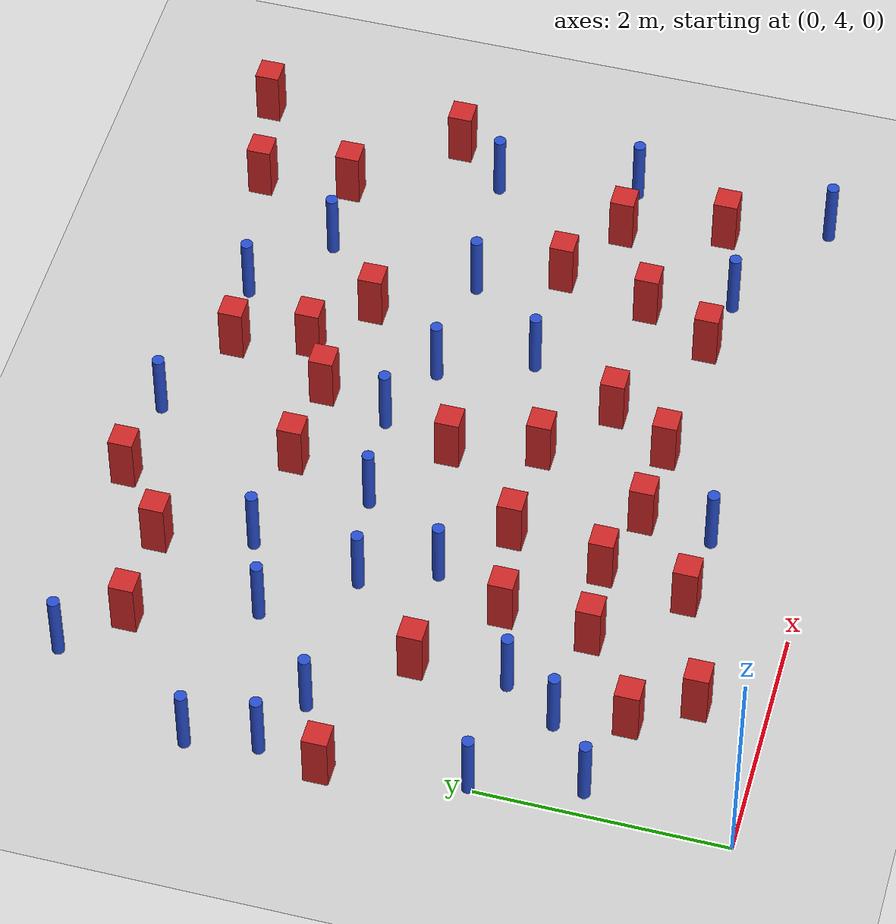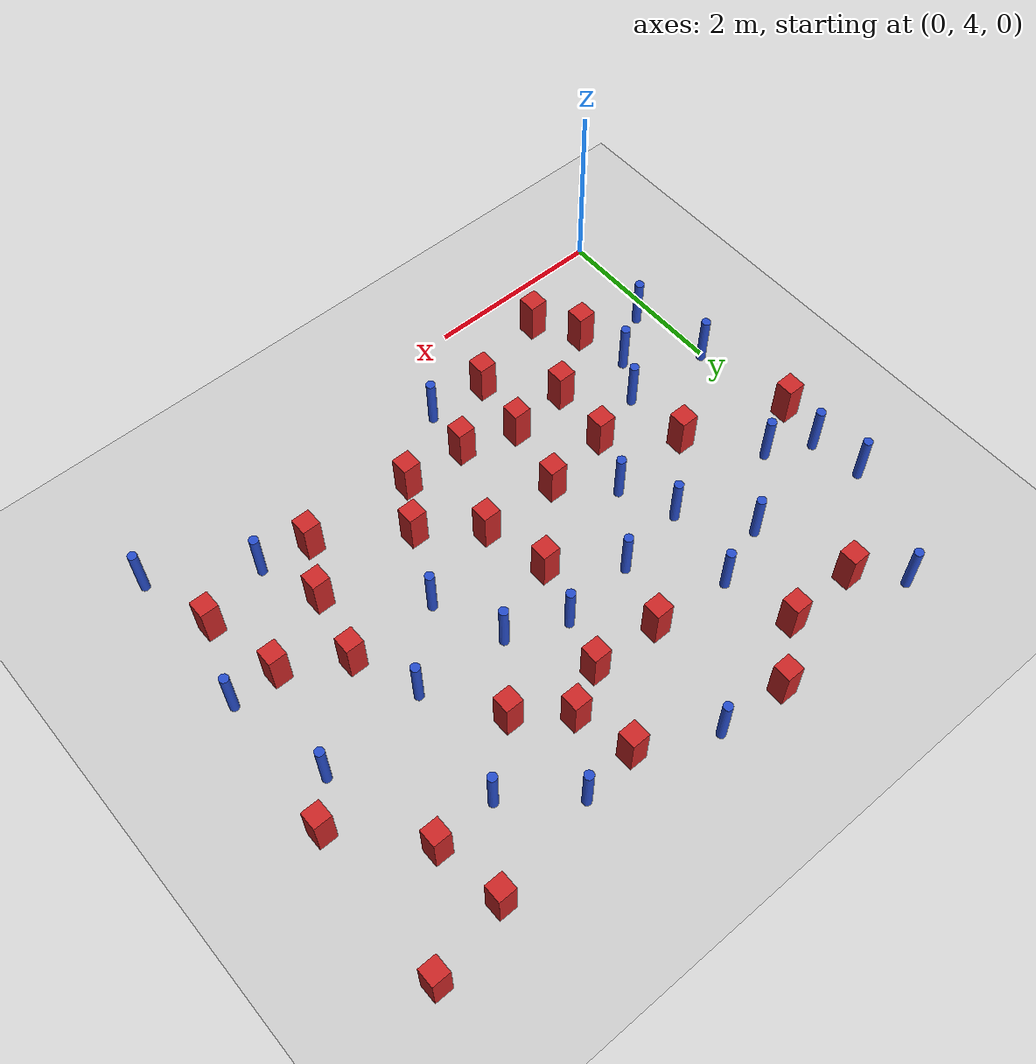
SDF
<sdf version="1.6">
 <world name="default">
  <model name="ground_plane">
   <static>1</static>
   <link name="link">
    <collision name="collision">
     <geometry><plane><normal>0 0 1</normal><size>100 100</size></plane></geometry>
     <surface><friction><ode><mu>100</mu><mu2>50</mu2></ode></friction></surface>
    </collision>
    <visual name="visual">
     <cast_shadows>0</cast_shadows>
     <geometry><plane><normal>0 0 1</normal><size>100 100</size></plane></geometry>
     <material>
      <ambient>1.0 1.0 1.0 1.0</ambient>
      <diffuse>0.8 0.8 0.8 1.0</diffuse>
      <specular>0.01 0.01 0.01 1.000000</specular>
     </material>
    </visual>
   </link>
  </model>
  <model name="square_post_obstacle1">
   <static>true</static>
   <pose>0.894384582868 9.0033171066 -6.11067671241e-07 -5.50515727128e-06 -8.79689657224e-07 2.37013304536e-05</pose>
   <link name="link">
    <pose>0 0 0.25 0 -0 0</pose>
    <inertial>
     <mass>100</mass>
     <inertia>
      <ixx>0.166667</ixx>
      <ixy>0</ixy>
      <ixz>0</ixz>
      <iyy>0.166667</iyy>
      <iyz>0</iyz>
      <izz>0.166667</izz>
     </inertia>
    </inertial>
    <collision name="collision"><geometry><box><size>.2 .2 .5</size></box></geometry></collision>
    <visual name="visual">
     <geometry><box><size>.2 .2 .5</size></box></geometry>
     <material>
      <script><name>Gazebo/Red</name><uri>file://media/materials/scripts/gazebo.material</uri></script>
     </material>
    </visual>
   </link>
  </model>
  <model name="pole_obstacle2">
   <static>true</static>
   <pose>0.753142357404 5.56163420365 -9.47619616065e-06 5.49618799737e-07 2.36310414065e-07 -1.55090534796e-07</pose>
   <link name="link">
    <pose>0 0 0.3 0 -0 0</pose>
    <inertial>
     <mass>1</mass>
     <inertia><ixx>0.145833</ixx><ixy>0</ixy><ixz>0</ixz><iyy>0.145833</iyy><iyz>0</iyz><izz>0.125</izz></inertia>
    </inertial>
    <collision name="collision">
     <geometry><cylinder><radius>0.05</radius><length>.6</length></cylinder></geometry>
    </collision>
    <visual name="visual">
     <geometry><cylinder><radius>0.05</radius><length>.6</length></cylinder></geometry>
     <material>
      <script><name>Gazebo/Blue</name><uri>file://media/materials/scripts/gazebo.material</uri></script>
     </material>
    </visual>
   </link>
  </model>
  <model name="pole_obstacle5">
   <static>true</static>
   <pose>2.79837274544 4.79413468855 -9.47619616065e-06 5.49618799738e-07 2.3631041406e-07 -1.55090534801e-07</pose>
   <link name="link">
    <pose>0 0 0.3 0 -0 0</pose>
    <inertial>
     <mass>1</mass>
     <inertia><ixx>0.145833</ixx><ixy>0</ixy><ixz>0</ixz><iyy>0.145833</iyy><iyz>0</iyz><izz>0.125</izz></inertia>
    </inertial>
    <collision name="collision">
     <geometry><cylinder><radius>0.05</radius><length>.6</length></cylinder></geometry>
    </collision>
    <visual name="visual">
     <geometry><cylinder><radius>0.05</radius><length>.6</length></cylinder></geometry>
     <material>
      <script><name>Gazebo/Blue</name><uri>file://media/materials/scripts/gazebo.material</uri></script>
     </material>
    </visual>
   </link>
  </model>
  <model name="square_post_obstacle7">
   <static>true</static>
   <pose>4.74108814774 5.26752982219 -6.11067671241e-07 -5.50515727128e-06 -8.79689657224e-07 2.37013304536e-05</pose>
   <link name="link">
    <pose>0 0 0.25 0 -0 0</pose>
    <inertial>
     <mass>100</mass>
     <inertia>
      <ixx>0.166667</ixx>
      <ixy>0</ixy>
      <ixz>0</ixz>
      <iyy>0.166667</iyy>
      <iyz>0</iyz>
      <izz>0.166667</izz>
     </inertia>
    </inertial>
    <collision name="collision"><geometry><box><size>.2 .2 .5</size></box></geometry></collision>
    <visual name="visual">
     <geometry><box><size>.2 .2 .5</size></box></geometry>
     <material>
      <script><name>Gazebo/Red</name><uri>file://media/materials/scripts/gazebo.material</uri></script>
     </material>
    </visual>
   </link>
  </model>
  <model name="pole_obstacle8">
   <static>true</static>
   <pose>1.86516818854 8.27043241651 -9.47619616065e-06 5.49618799737e-07 2.36310414046e-07 -1.55090534809e-07</pose>
   <link name="link">
    <pose>0 0 0.3 0 -0 0</pose>
    <inertial>
     <mass>1</mass>
     <inertia><ixx>0.145833</ixx><ixy>0</ixy><ixz>0</ixz><iyy>0.145833</iyy><iyz>0</iyz><izz>0.125</izz></inertia>
    </inertial>
    <collision name="collision">
     <geometry><cylinder><radius>0.05</radius><length>.6</length></cylinder></geometry>
    </collision>
    <visual name="visual">
     <geometry><cylinder><radius>0.05</radius><length>.6</length></cylinder></geometry>
     <material>
      <script><name>Gazebo/Blue</name><uri>file://media/materials/scripts/gazebo.material</uri></script>
     </material>
    </visual>
   </link>
  </model>
  <model name="square_post_obstacle17">
   <static>true</static>
   <pose>6.01914977429 5.394370499 -6.11067671241e-07 -5.50515727128e-06 -8.79689657224e-07 2.37013304536e-05</pose>
   <link name="link">
    <pose>0 0 0.25 0 -0 0</pose>
    <inertial>
     <mass>100</mass>
     <inertia>
      <ixx>0.166667</ixx>
      <ixy>0</ixy>
      <ixz>0</ixz>
      <iyy>0.166667</iyy>
      <iyz>0</iyz>
      <izz>0.166667</izz>
     </inertia>
    </inertial>
    <collision name="collision"><geometry><box><size>.2 .2 .5</size></box></geometry></collision>
    <visual name="visual">
     <geometry><box><size>.2 .2 .5</size></box></geometry>
     <material>
      <script><name>Gazebo/Red</name><uri>file://media/materials/scripts/gazebo.material</uri></script>
     </material>
    </visual>
   </link>
  </model>
  <model name="pole_obstacle11">
   <static>true</static>
   <pose>4.92978391876 7.26222886817 -9.47619616065e-06 5.49618799737e-07 2.36310414037e-07 -1.55090534814e-07</pose>
   <link name="link">
    <pose>0 0 0.3 0 -0 0</pose>
    <inertial>
     <mass>1</mass>
     <inertia><ixx>0.145833</ixx><ixy>0</ixy><ixz>0</ixz><iyy>0.145833</iyy><iyz>0</iyz><izz>0.125</izz></inertia>
    </inertial>
    <collision name="collision">
     <geometry><cylinder><radius>0.05</radius><length>.6</length></cylinder></geometry>
    </collision>
    <visual name="visual">
     <geometry><cylinder><radius>0.05</radius><length>.6</length></cylinder></geometry>
     <material>
      <script><name>Gazebo/Blue</name><uri>file://media/materials/scripts/gazebo.material</uri></script>
     </material>
    </visual>
   </link>
  </model>
  <model name="pole_obstacle18">
   <static>true</static>
   <pose>2.49929061689 7.50461942929 -9.47619616065e-06 5.49618799738e-07 2.3631041406e-07 -1.55090534801e-07</pose>
   <link name="link">
    <pose>0 0 0.3 0 -0 0</pose>
    <inertial>
     <mass>1</mass>
     <inertia><ixx>0.145833</ixx><ixy>0</ixy><ixz>0</ixz><iyy>0.145833</iyy><iyz>0</iyz><izz>0.125</izz></inertia>
    </inertial>
    <collision name="collision">
     <geometry><cylinder><radius>0.05</radius><length>.6</length></cylinder></geometry>
    </collision>
    <visual name="visual">
     <geometry><cylinder><radius>0.05</radius><length>.6</length></cylinder></geometry>
     <material>
      <script><name>Gazebo/Blue</name><uri>file://media/materials/scripts/gazebo.material</uri></script>
     </material>
    </visual>
   </link>
  </model>
  <model name="pole_obstacle24">
   <static>true</static>
   <pose>0.0267479035835 6.04066825967 -9.47619616065e-06 5.49618799737e-07 2.36310414066e-07 -1.55090534797e-07</pose>
   <link name="link">
    <pose>0 0 0.3 0 -0 0</pose>
    <inertial>
     <mass>1</mass>
     <inertia><ixx>0.145833</ixx><ixy>0</ixy><ixz>0</ixz><iyy>0.145833</iyy><iyz>0</iyz><izz>0.125</izz></inertia>
    </inertial>
    <collision name="collision">
     <geometry><cylinder><radius>0.05</radius><length>.6</length></cylinder></geometry>
    </collision>
    <visual name="visual">
     <geometry><cylinder><radius>0.05</radius><length>.6</length></cylinder></geometry>
     <material>
      <script><name>Gazebo/Blue</name><uri>file://media/materials/scripts/gazebo.material</uri></script>
     </material>
    </visual>
   </link>
  </model>
  <model name="pole_obstacle27">
   <static>true</static>
   <pose>-0.0304629822005 7.66720182366 -9.47619616065e-06 5.49618799737e-07 2.36310414067e-07 -1.55090534797e-07</pose>
   <link name="link">
    <pose>0 0 0.3 0 -0 0</pose>
    <inertial>
     <mass>1</mass>
     <inertia><ixx>0.145833</ixx><ixy>0</ixy><ixz>0</ixz><iyy>0.145833</iyy><iyz>0</iyz><izz>0.125</izz></inertia>
    </inertial>
    <collision name="collision">
     <geometry><cylinder><radius>0.05</radius><length>.6</length></cylinder></geometry>
    </collision>
    <visual name="visual">
     <geometry><cylinder><radius>0.05</radius><length>.6</length></cylinder></geometry>
     <material>
      <script><name>Gazebo/Blue</name><uri>file://media/materials/scripts/gazebo.material</uri></script>
     </material>
    </visual>
   </link>
  </model>
  <model name="pole_obstacle40">
   <static>true</static>
   <pose>4.41660310928 9.0744656042 -9.47619616065e-06 5.49618799737e-07 2.36310414065e-07 -1.55090534796e-07</pose>
   <link name="link">
    <pose>0 0 0.3 0 -0 0</pose>
    <inertial>
     <mass>1</mass>
     <inertia><ixx>0.145833</ixx><ixy>0</ixy><ixz>0</ixz><iyy>0.145833</iyy><iyz>0</iyz><izz>0.125</izz></inertia>
    </inertial>
    <collision name="collision">
     <geometry><cylinder><radius>0.05</radius><length>.6</length></cylinder></geometry>
    </collision>
    <visual name="visual">
     <geometry><cylinder><radius>0.05</radius><length>.6</length></cylinder></geometry>
     <material>
      <script><name>Gazebo/Blue</name><uri>file://media/materials/scripts/gazebo.material</uri></script>
     </material>
    </visual>
   </link>
  </model>
  <model name="square_post_obstacle45">
   <static>true</static>
   <pose>3.13919522344 7.0144658365 -6.11067671241e-07 -5.50515727128e-06 -8.79689657224e-07 2.37013304536e-05</pose>
   <link name="link">
    <pose>0 0 0.25 0 -0 0</pose>
    <inertial>
     <mass>100</mass>
     <inertia>
      <ixx>0.166667</ixx>
      <ixy>0</ixy>
      <ixz>0</ixz>
      <iyy>0.166667</iyy>
      <iyz>0</iyz>
      <izz>0.166667</izz>
     </inertia>
    </inertial>
    <collision name="collision"><geometry><box><size>.2 .2 .5</size></box></geometry></collision>
    <visual name="visual">
     <geometry><box><size>.2 .2 .5</size></box></geometry>
     <material>
      <script><name>Gazebo/Red</name><uri>file://media/materials/scripts/gazebo.material</uri></script>
     </material>
    </visual>
   </link>
  </model>
  <model name="pole_obstacle50">
   <static>true</static>
   <pose>6.08434430302 7.36531328684 -9.47619616065e-06 5.49618799737e-07 2.36310414037e-07 -1.55090534814e-07</pose>
   <link name="link">
    <pose>0 0 0.3 0 -0 0</pose>
    <inertial>
     <mass>1</mass>
     <inertia><ixx>0.145833</ixx><ixy>0</ixy><ixz>0</ixz><iyy>0.145833</iyy><iyz>0</iyz><izz>0.125</izz></inertia>
    </inertial>
    <collision name="collision">
     <geometry><cylinder><radius>0.05</radius><length>.6</length></cylinder></geometry>
    </collision>
    <visual name="visual">
     <geometry><cylinder><radius>0.05</radius><length>.6</length></cylinder></geometry>
     <material>
      <script><name>Gazebo/Blue</name><uri>file://media/materials/scripts/gazebo.material</uri></script>
     </material>
    </visual>
   </link>
  </model>
  <model name="square_post_obstacle51">
   <static>true</static>
   <pose>2.26312557808 5.54362399611 -6.11067671241e-07 -5.50515727128e-06 -8.79689657224e-07 2.37013304536e-05</pose>
   <link name="link">
    <pose>0 0 0.25 0 -0 0</pose>
    <inertial>
     <mass>100</mass>
     <inertia>
      <ixx>0.166667</ixx>
      <ixy>0</ixy>
      <ixz>0</ixz>
      <iyy>0.166667</iyy>
      <iyz>0</iyz>
      <izz>0.166667</izz>
     </inertia>
    </inertial>
    <collision name="collision"><geometry><box><size>.2 .2 .5</size></box></geometry></collision>
    <visual name="visual">
     <geometry><box><size>.2 .2 .5</size></box></geometry>
     <material>
      <script><name>Gazebo/Red</name><uri>file://media/materials/scripts/gazebo.material</uri></script>
     </material>
    </visual>
   </link>
  </model>
  <model name="square_post_obstacle53">
   <static>true</static>
   <pose>2.43882614562 6.3201862929 -6.11067671241e-07 -5.50515727128e-06 -8.79689657224e-07 2.37013304536e-05</pose>
   <link name="link">
    <pose>0 0 0.25 0 -0 0</pose>
    <inertial>
     <mass>100</mass>
     <inertia>
      <ixx>0.166667</ixx>
      <ixy>0</ixy>
      <ixz>0</ixz>
      <iyy>0.166667</iyy>
      <iyz>0</iyz>
      <izz>0.166667</izz>
     </inertia>
    </inertial>
    <collision name="collision"><geometry><box><size>.2 .2 .5</size></box></geometry></collision>
    <visual name="visual">
     <geometry><box><size>.2 .2 .5</size></box></geometry>
     <material>
      <script><name>Gazebo/Red</name><uri>file://media/materials/scripts/gazebo.material</uri></script>
     </material>
    </visual>
   </link>
  </model>
  <model name="pole_obstacle52">
   <static>true</static>
   <pose>6.26410329306 4.56244521412 -9.47619616065e-06 5.49618799737e-07 2.36310414037e-07 -1.55090534814e-07</pose>
   <link name="link">
    <pose>0 0 0.3 0 -0 0</pose>
    <inertial>
     <mass>1</mass>
     <inertia><ixx>0.145833</ixx><ixy>0</ixy><ixz>0</ixz><iyy>0.145833</iyy><iyz>0</iyz><izz>0.125</izz></inertia>
    </inertial>
    <collision name="collision">
     <geometry><cylinder><radius>0.05</radius><length>.6</length></cylinder></geometry>
    </collision>
    <visual name="visual">
     <geometry><cylinder><radius>0.05</radius><length>.6</length></cylinder></geometry>
     <material>
      <script><name>Gazebo/Blue</name><uri>file://media/materials/scripts/gazebo.material</uri></script>
     </material>
    </visual>
   </link>
  </model>
  <model name="square_post_obstacle59">
   <static>true</static>
   <pose>1.01152241326 6.73771659498 -6.11067671241e-07 -5.50515727128e-06 -8.79689657224e-07 2.37013304536e-05</pose>
   <link name="link">
    <pose>0 0 0.25 0 -0 0</pose>
    <inertial>
     <mass>100</mass>
     <inertia>
      <ixx>0.166667</ixx>
      <ixy>0</ixy>
      <ixz>0</ixz>
      <iyy>0.166667</iyy>
      <iyz>0</iyz>
      <izz>0.166667</izz>
     </inertia>
    </inertial>
    <collision name="collision"><geometry><box><size>.2 .2 .5</size></box></geometry></collision>
    <visual name="visual">
     <geometry><box><size>.2 .2 .5</size></box></geometry>
     <material>
      <script><name>Gazebo/Red</name><uri>file://media/materials/scripts/gazebo.material</uri></script>
     </material>
    </visual>
   </link>
  </model>
  <model name="square_post_obstacle61">
   <static>true</static>
   <pose>6.433334879 7.78018629255 -6.11067671241e-07 -5.50515727128e-06 -8.79689657224e-07 2.37013304536e-05</pose>
   <link name="link">
    <pose>0 0 0.25 0 -0 0</pose>
    <inertial>
     <mass>100</mass>
     <inertia>
      <ixx>0.166667</ixx>
      <ixy>0</ixy>
      <ixz>0</ixz>
      <iyy>0.166667</iyy>
      <iyz>0</iyz>
      <izz>0.166667</izz>
     </inertia>
    </inertial>
    <collision name="collision"><geometry><box><size>.2 .2 .5</size></box></geometry></collision>
    <visual name="visual">
     <geometry><box><size>.2 .2 .5</size></box></geometry>
     <material>
      <script><name>Gazebo/Red</name><uri>file://media/materials/scripts/gazebo.material</uri></script>
     </material>
    </visual>
   </link>
  </model>
  <model name="square_post_obstacle62">
   <static>true</static>
   <pose>5.6249894684 9.3105218613 -6.11067671241e-07 -5.50515727128e-06 -8.79689657224e-07 2.37013304536e-05</pose>
   <link name="link">
    <pose>0 0 0.25 0 -0 0</pose>
    <inertial>
     <mass>100</mass>
     <inertia>
      <ixx>0.166667</ixx>
      <ixy>0</ixy>
      <ixz>0</ixz>
      <iyy>0.166667</iyy>
      <iyz>0</iyz>
      <izz>0.166667</izz>
     </inertia>
    </inertial>
    <collision name="collision"><geometry><box><size>.2 .2 .5</size></box></geometry></collision>
    <visual name="visual">
     <geometry><box><size>.2 .2 .5</size></box></geometry>
     <material>
      <script><name>Gazebo/Red</name><uri>file://media/materials/scripts/gazebo.material</uri></script>
     </material>
    </visual>
   </link>
  </model>
  <model name="pole_obstacle65">
   <static>true</static>
   <pose>3.93894727403 7.33667922009 -9.47619616065e-06 5.49618799738e-07 2.3631041406e-07 -1.55090534801e-07</pose>
   <link name="link">
    <pose>0 0 0.3 0 -0 0</pose>
    <inertial>
     <mass>1</mass>
     <inertia><ixx>0.145833</ixx><ixy>0</ixy><ixz>0</ixz><iyy>0.145833</iyy><iyz>0</iyz><izz>0.125</izz></inertia>
    </inertial>
    <collision name="collision">
     <geometry><cylinder><radius>0.05</radius><length>.6</length></cylinder></geometry>
    </collision>
    <visual name="visual">
     <geometry><cylinder><radius>0.05</radius><length>.6</length></cylinder></geometry>
     <material>
      <script><name>Gazebo/Blue</name><uri>file://media/materials/scripts/gazebo.material</uri></script>
     </material>
    </visual>
   </link>
  </model>
  <model name="square_post_obstacle77">
   <static>true</static>
   <pose>4.45511041271 8.01604162694 -6.11067671241e-07 -5.50515727128e-06 -8.79689657224e-07 2.37013304536e-05</pose>
   <link name="link">
    <pose>0 0 0.25 0 -0 0</pose>
    <inertial>
     <mass>100</mass>
     <inertia>
      <ixx>0.166667</ixx>
      <ixy>0</ixy>
      <ixz>0</ixz>
      <iyy>0.166667</iyy>
      <iyz>0</iyz>
      <izz>0.166667</izz>
     </inertia>
    </inertial>
    <collision name="collision"><geometry><box><size>.2 .2 .5</size></box></geometry></collision>
    <visual name="visual">
     <geometry><box><size>.2 .2 .5</size></box></geometry>
     <material>
      <script><name>Gazebo/Red</name><uri>file://media/materials/scripts/gazebo.material</uri></script>
     </material>
    </visual>
   </link>
  </model>
  <model name="pole_obstacle81">
   <static>true</static>
   <pose>5.07467374459 8.53733086704 -9.47619616065e-06 5.49618799737e-07 2.36310414065e-07 -1.55090534796e-07</pose>
   <link name="link">
    <pose>0 0 0.3 0 -0 0</pose>
    <inertial>
     <mass>1</mass>
     <inertia><ixx>0.145833</ixx><ixy>0</ixy><ixz>0</ixz><iyy>0.145833</iyy><iyz>0</iyz><izz>0.125</izz></inertia>
    </inertial>
    <collision name="collision">
     <geometry><cylinder><radius>0.05</radius><length>.6</length></cylinder></geometry>
    </collision>
    <visual name="visual">
     <geometry><cylinder><radius>0.05</radius><length>.6</length></cylinder></geometry>
     <material>
      <script><name>Gazebo/Blue</name><uri>file://media/materials/scripts/gazebo.material</uri></script>
     </material>
    </visual>
   </link>
  </model>
  <model name="square_post_obstacle92">
   <static>true</static>
   <pose>0.889251814028 5.00997136802 -6.11067671241e-07 -5.50515727128e-06 -8.79689657224e-07 2.37013304536e-05</pose>
   <link name="link">
    <pose>0 0 0.25 0 -0 0</pose>
    <inertial>
     <mass>100</mass>
     <inertia>
      <ixx>0.166667</ixx>
      <ixy>0</ixy>
      <ixz>0</ixz>
      <iyy>0.166667</iyy>
      <iyz>0</iyz>
      <izz>0.166667</izz>
     </inertia>
    </inertial>
    <collision name="collision"><geometry><box><size>.2 .2 .5</size></box></geometry></collision>
    <visual name="visual">
     <geometry><box><size>.2 .2 .5</size></box></geometry>
     <material>
      <script><name>Gazebo/Red</name><uri>file://media/materials/scripts/gazebo.material</uri></script>
     </material>
    </visual>
   </link>
  </model>
  <model name="pole_obstacle113">
   <static>true</static>
   <pose>3.02516442035 9.39498370444 -9.4761961606e-06 5.49618799729e-07 2.36310414e-07 -1.55090534824e-07</pose>
   <link name="link">
    <pose>0 0 0.3 0 -0 0</pose>
    <inertial>
     <mass>1</mass>
     <inertia><ixx>0.145833</ixx><ixy>0</ixy><ixz>0</ixz><iyy>0.145833</iyy><iyz>0</iyz><izz>0.125</izz></inertia>
    </inertial>
    <collision name="collision">
     <geometry><cylinder><radius>0.05</radius><length>.6</length></cylinder></geometry>
    </collision>
    <visual name="visual">
     <geometry><cylinder><radius>0.05</radius><length>.6</length></cylinder></geometry>
     <material>
      <script><name>Gazebo/Blue</name><uri>file://media/materials/scripts/gazebo.material</uri></script>
     </material>
    </visual>
   </link>
  </model>
  <model name="square_post_obstacle101">
   <static>true</static>
   <pose>3.81500678661 9.01333557074 -6.11067671241e-07 -5.50515727128e-06 -8.79689657224e-07 2.37013304536e-05</pose>
   <link name="link">
    <pose>0 0 0.25 0 -0 0</pose>
    <inertial>
     <mass>100</mass>
     <inertia>
      <ixx>0.166667</ixx>
      <ixy>0</ixy>
      <ixz>0</ixz>
      <iyy>0.166667</iyy>
      <iyz>0</iyz>
      <izz>0.166667</izz>
     </inertia>
    </inertial>
    <collision name="collision"><geometry><box><size>.2 .2 .5</size></box></geometry></collision>
    <visual name="visual">
     <geometry><box><size>.2 .2 .5</size></box></geometry>
     <material>
      <script><name>Gazebo/Red</name><uri>file://media/materials/scripts/gazebo.material</uri></script>
     </material>
    </visual>
   </link>
  </model>
  <model name="square_post_obstacle106">
   <static>true</static>
   <pose>5.82132049965 6.22876286386 -6.11067671241e-07 -5.50515727128e-06 -8.79689657224e-07 2.37013304536e-05</pose>
   <link name="link">
    <pose>0 0 0.25 0 -0 0</pose>
    <inertial>
     <mass>100</mass>
     <inertia>
      <ixx>0.166667</ixx>
      <ixy>0</ixy>
      <ixz>0</ixz>
      <iyy>0.166667</iyy>
      <iyz>0</iyz>
      <izz>0.166667</izz>
     </inertia>
    </inertial>
    <collision name="collision"><geometry><box><size>.2 .2 .5</size></box></geometry></collision>
    <visual name="visual">
     <geometry><box><size>.2 .2 .5</size></box></geometry>
     <material>
      <script><name>Gazebo/Red</name><uri>file://media/materials/scripts/gazebo.material</uri></script>
     </material>
    </visual>
   </link>
  </model>
  <model name="square_post_obstacle107">
   <static>true</static>
   <pose>1.70492084163 9.01488930108 -6.11067671241e-07 -5.50515727128e-06 -8.79689657224e-07 2.37013304536e-05</pose>
   <link name="link">
    <pose>0 0 0.25 0 -0 0</pose>
    <inertial>
     <mass>100</mass>
     <inertia>
      <ixx>0.166667</ixx>
      <ixy>0</ixy>
      <ixz>0</ixz>
      <iyy>0.166667</iyy>
      <iyz>0</iyz>
      <izz>0.166667</izz>
     </inertia>
    </inertial>
    <collision name="collision"><geometry><box><size>.2 .2 .5</size></box></geometry></collision>
    <visual name="visual">
     <geometry><box><size>.2 .2 .5</size></box></geometry>
     <material>
      <script><name>Gazebo/Red</name><uri>file://media/materials/scripts/gazebo.material</uri></script>
     </material>
    </visual>
   </link>
  </model>
  <model name="pole_obstacle119">
   <static>true</static>
   <pose>1.2082999855 8.03391093768 -9.47619616065e-06 5.49618799737e-07 2.36310414068e-07 -1.55090534795e-07</pose>
   <link name="link">
    <pose>0 0 0.3 0 -0 0</pose>
    <inertial>
     <mass>1</mass>
     <inertia><ixx>0.145833</ixx><ixy>0</ixy><ixz>0</ixz><iyy>0.145833</iyy><iyz>0</iyz><izz>0.125</izz></inertia>
    </inertial>
    <collision name="collision">
     <geometry><cylinder><radius>0.05</radius><length>.6</length></cylinder></geometry>
    </collision>
    <visual name="visual">
     <geometry><cylinder><radius>0.05</radius><length>.6</length></cylinder></geometry>
     <material>
      <script><name>Gazebo/Blue</name><uri>file://media/materials/scripts/gazebo.material</uri></script>
     </material>
    </visual>
   </link>
  </model>
  <model name="pole_obstacle127">
   <static>true</static>
   <pose>-0.119826411878 8.22949362245 -9.47619616065e-06 5.49618799737e-07 2.36310414045e-07 -1.5509053481e-07</pose>
   <link name="link">
    <pose>0 0 0.3 0 -0 0</pose>
    <inertial>
     <mass>1</mass>
     <inertia><ixx>0.145833</ixx><ixy>0</ixy><ixz>0</ixz><iyy>0.145833</iyy><iyz>0</iyz><izz>0.125</izz></inertia>
    </inertial>
    <collision name="collision">
     <geometry><cylinder><radius>0.05</radius><length>.6</length></cylinder></geometry>
    </collision>
    <visual name="visual">
     <geometry><cylinder><radius>0.05</radius><length>.6</length></cylinder></geometry>
     <material>
      <script><name>Gazebo/Blue</name><uri>file://media/materials/scripts/gazebo.material</uri></script>
     </material>
    </visual>
   </link>
  </model>
  <model name="square_post_obstacle113">
   <static>true</static>
   <pose>1.18039383356 4.5429833093 -6.11067671241e-07 -5.50515727128e-06 -8.79689657224e-07 2.37013304536e-05</pose>
   <link name="link">
    <pose>0 0 0.25 0 -0 0</pose>
    <inertial>
     <mass>100</mass>
     <inertia>
      <ixx>0.166667</ixx>
      <ixy>0</ixy>
      <ixz>0</ixz>
      <iyy>0.166667</iyy>
      <iyz>0</iyz>
      <izz>0.166667</izz>
     </inertia>
    </inertial>
    <collision name="collision"><geometry><box><size>.2 .2 .5</size></box></geometry></collision>
    <visual name="visual">
     <geometry><box><size>.2 .2 .5</size></box></geometry>
     <material>
      <script><name>Gazebo/Red</name><uri>file://media/materials/scripts/gazebo.material</uri></script>
     </material>
    </visual>
   </link>
  </model>
  <model name="square_post_obstacle114">
   <static>true</static>
   <pose>3.8676846663 5.83936437306 -6.11067671241e-07 -5.50515727128e-06 -8.79689657224e-07 2.37013304536e-05</pose>
   <link name="link">
    <pose>0 0 0.25 0 -0 0</pose>
    <inertial>
     <mass>100</mass>
     <inertia>
      <ixx>0.166667</ixx>
      <ixy>0</ixy>
      <ixz>0</ixz>
      <iyy>0.166667</iyy>
      <iyz>0</iyz>
      <izz>0.166667</izz>
     </inertia>
    </inertial>
    <collision name="collision"><geometry><box><size>.2 .2 .5</size></box></geometry></collision>
    <visual name="visual">
     <geometry><box><size>.2 .2 .5</size></box></geometry>
     <material>
      <script><name>Gazebo/Red</name><uri>file://media/materials/scripts/gazebo.material</uri></script>
     </material>
    </visual>
   </link>
  </model>
  <model name="square_post_obstacle117">
   <static>true</static>
   <pose>3.29921372192 6.30231773081 -6.11067671241e-07 -5.50515727128e-06 -8.79689657224e-07 2.37013304536e-05</pose>
   <link name="link">
    <pose>0 0 0.25 0 -0 0</pose>
    <inertial>
     <mass>100</mass>
     <inertia>
      <ixx>0.166667</ixx>
      <ixy>0</ixy>
      <ixz>0</ixz>
      <iyy>0.166667</iyy>
      <iyz>0</iyz>
      <izz>0.166667</izz>
     </inertia>
    </inertial>
    <collision name="collision"><geometry><box><size>.2 .2 .5</size></box></geometry></collision>
    <visual name="visual">
     <geometry><box><size>.2 .2 .5</size></box></geometry>
     <material>
      <script><name>Gazebo/Red</name><uri>file://media/materials/scripts/gazebo.material</uri></script>
     </material>
    </visual>
   </link>
  </model>
  <model name="square_post_obstacle135">
   <static>true</static>
   <pose>2.74524402246 8.20013825905 -6.11067671241e-07 -5.50515727128e-06 -8.79689657224e-07 2.37013304536e-05</pose>
   <link name="link">
    <pose>0 0 0.25 0 -0 0</pose>
    <inertial>
     <mass>100</mass>
     <inertia>
      <ixx>0.166667</ixx>
      <ixy>0</ixy>
      <ixz>0</ixz>
      <iyy>0.166667</iyy>
      <iyz>0</iyz>
      <izz>0.166667</izz>
     </inertia>
    </inertial>
    <collision name="collision"><geometry><box><size>.2 .2 .5</size></box></geometry></collision>
    <visual name="visual">
     <geometry><box><size>.2 .2 .5</size></box></geometry>
     <material>
      <script><name>Gazebo/Red</name><uri>file://media/materials/scripts/gazebo.material</uri></script>
     </material>
    </visual>
   </link>
  </model>
  <model name="pole_obstacle147">
   <static>true</static>
   <pose>1.6974144246 7.36893828608 -9.47619616065e-06 5.49618799737e-07 2.36310414061e-07 -1.550905348e-07</pose>
   <link name="link">
    <pose>0 0 0.3 0 -0 0</pose>
    <inertial>
     <mass>1</mass>
     <inertia><ixx>0.145833</ixx><ixy>0</ixy><ixz>0</ixz><iyy>0.145833</iyy><iyz>0</iyz><izz>0.125</izz></inertia>
    </inertial>
    <collision name="collision">
     <geometry><cylinder><radius>0.05</radius><length>.6</length></cylinder></geometry>
    </collision>
    <visual name="visual">
     <geometry><cylinder><radius>0.05</radius><length>.6</length></cylinder></geometry>
     <material>
      <script><name>Gazebo/Blue</name><uri>file://media/materials/scripts/gazebo.material</uri></script>
     </material>
    </visual>
   </link>
  </model>
  <model name="square_post_obstacle137">
   <static>true</static>
   <pose>5.7407480823 8.57331062591 -6.11067671241e-07 -5.50515727128e-06 -8.79689657224e-07 2.37013304536e-05</pose>
   <link name="link">
    <pose>0 0 0.25 0 -0 0</pose>
    <inertial>
     <mass>100</mass>
     <inertia>
      <ixx>0.166667</ixx>
      <ixy>0</ixy>
      <ixz>0</ixz>
      <iyy>0.166667</iyy>
      <iyz>0</iyz>
      <izz>0.166667</izz>
     </inertia>
    </inertial>
    <collision name="collision"><geometry><box><size>.2 .2 .5</size></box></geometry></collision>
    <visual name="visual">
     <geometry><box><size>.2 .2 .5</size></box></geometry>
     <material>
      <script><name>Gazebo/Red</name><uri>file://media/materials/scripts/gazebo.material</uri></script>
     </material>
    </visual>
   </link>
  </model>
  <model name="pole_obstacle150">
   <static>true</static>
   <pose>0.204072866847 5.18548119922 -9.47619616065e-06 5.49618799737e-07 2.36310414069e-07 -1.55090534795e-07</pose>
   <link name="link">
    <pose>0 0 0.3 0 -0 0</pose>
    <inertial>
     <mass>1</mass>
     <inertia><ixx>0.145833</ixx><ixy>0</ixy><ixz>0</ixz><iyy>0.145833</iyy><iyz>0</iyz><izz>0.125</izz></inertia>
    </inertial>
    <collision name="collision">
     <geometry><cylinder><radius>0.05</radius><length>.6</length></cylinder></geometry>
    </collision>
    <visual name="visual">
     <geometry><cylinder><radius>0.05</radius><length>.6</length></cylinder></geometry>
     <material>
      <script><name>Gazebo/Blue</name><uri>file://media/materials/scripts/gazebo.material</uri></script>
     </material>
    </visual>
   </link>
  </model>
  <model name="square_post_obstacle141">
   <static>true</static>
   <pose>3.50287467973 8.16029974305 -6.11067671241e-07 -5.50515727128e-06 -8.79689657224e-07 2.37013304536e-05</pose>
   <link name="link">
    <pose>0 0 0.25 0 -0 0</pose>
    <inertial>
     <mass>100</mass>
     <inertia>
      <ixx>0.166667</ixx>
      <ixy>0</ixy>
      <ixz>0</ixz>
      <iyy>0.166667</iyy>
      <iyz>0</iyz>
      <izz>0.166667</izz>
     </inertia>
    </inertial>
    <collision name="collision"><geometry><box><size>.2 .2 .5</size></box></geometry></collision>
    <visual name="visual">
     <geometry><box><size>.2 .2 .5</size></box></geometry>
     <material>
      <script><name>Gazebo/Red</name><uri>file://media/materials/scripts/gazebo.material</uri></script>
     </material>
    </visual>
   </link>
  </model>
  <model name="square_post_obstacle147">
   <static>true</static>
   <pose>5.19821942351 6.58978796293 -6.11067671241e-07 -5.50515727128e-06 -8.79689657224e-07 2.37013304536e-05</pose>
   <link name="link">
    <pose>0 0 0.25 0 -0 0</pose>
    <inertial>
     <mass>100</mass>
     <inertia>
      <ixx>0.166667</ixx>
      <ixy>0</ixy>
      <ixz>0</ixz>
      <iyy>0.166667</iyy>
      <iyz>0</iyz>
      <izz>0.166667</izz>
     </inertia>
    </inertial>
    <collision name="collision"><geometry><box><size>.2 .2 .5</size></box></geometry></collision>
    <visual name="visual">
     <geometry><box><size>.2 .2 .5</size></box></geometry>
     <material>
      <script><name>Gazebo/Red</name><uri>file://media/materials/scripts/gazebo.material</uri></script>
     </material>
    </visual>
   </link>
  </model>
  <model name="pole_obstacle178">
   <static>true</static>
   <pose>3.33229962524 7.60133956951 -9.47619616065e-06 5.49618799738e-07 2.3631041406e-07 -1.55090534801e-07</pose>
   <link name="link">
    <pose>0 0 0.3 0 -0 0</pose>
    <inertial>
     <mass>1</mass>
     <inertia><ixx>0.145833</ixx><ixy>0</ixy><ixz>0</ixz><iyy>0.145833</iyy><iyz>0</iyz><izz>0.125</izz></inertia>
    </inertial>
    <collision name="collision">
     <geometry><cylinder><radius>0.05</radius><length>.6</length></cylinder></geometry>
    </collision>
    <visual name="visual">
     <geometry><cylinder><radius>0.05</radius><length>.6</length></cylinder></geometry>
     <material>
      <script><name>Gazebo/Blue</name><uri>file://media/materials/scripts/gazebo.material</uri></script>
     </material>
    </visual>
   </link>
  </model>
  <model name="square_post_obstacle169">
   <static>true</static>
   <pose>1.66781471364 6.19394253789 -6.11067671241e-07 -5.50515727128e-06 -8.79689657224e-07 2.37013304536e-05</pose>
   <link name="link">
    <pose>0 0 0.25 0 -0 0</pose>
    <inertial>
     <mass>100</mass>
     <inertia>
      <ixx>0.166667</ixx>
      <ixy>0</ixy>
      <ixz>0</ixz>
      <iyy>0.166667</iyy>
      <iyz>0</iyz>
      <izz>0.166667</izz>
     </inertia>
    </inertial>
    <collision name="collision"><geometry><box><size>.2 .2 .5</size></box></geometry></collision>
    <visual name="visual">
     <geometry><box><size>.2 .2 .5</size></box></geometry>
     <material>
      <script><name>Gazebo/Red</name><uri>file://media/materials/scripts/gazebo.material</uri></script>
     </material>
    </visual>
   </link>
  </model>
  <model name="square_post_obstacle171">
   <static>true</static>
   <pose>1.59139567455 5.48053387683 -6.11067671241e-07 -5.50515727128e-06 -8.79689657224e-07 2.37013304536e-05</pose>
   <link name="link">
    <pose>0 0 0.25 0 -0 0</pose>
    <inertial>
     <mass>100</mass>
     <inertia>
      <ixx>0.166667</ixx>
      <ixy>0</ixy>
      <ixz>0</ixz>
      <iyy>0.166667</iyy>
      <iyz>0</iyz>
      <izz>0.166667</izz>
     </inertia>
    </inertial>
    <collision name="collision"><geometry><box><size>.2 .2 .5</size></box></geometry></collision>
    <visual name="visual">
     <geometry><box><size>.2 .2 .5</size></box></geometry>
     <material>
      <script><name>Gazebo/Red</name><uri>file://media/materials/scripts/gazebo.material</uri></script>
     </material>
    </visual>
   </link>
  </model>
  <model name="pole_obstacle187">
   <static>true</static>
   <pose>5.27621569597 5.16946282688 -9.47619616065e-06 5.49618799737e-07 2.36310414037e-07 -1.55090534814e-07</pose>
   <link name="link">
    <pose>0 0 0.3 0 -0 0</pose>
    <inertial>
     <mass>1</mass>
     <inertia><ixx>0.145833</ixx><ixy>0</ixy><ixz>0</ixz><iyy>0.145833</iyy><iyz>0</iyz><izz>0.125</izz></inertia>
    </inertial>
    <collision name="collision">
     <geometry><cylinder><radius>0.05</radius><length>.6</length></cylinder></geometry>
    </collision>
    <visual name="visual">
     <geometry><cylinder><radius>0.05</radius><length>.6</length></cylinder></geometry>
     <material>
      <script><name>Gazebo/Blue</name><uri>file://media/materials/scripts/gazebo.material</uri></script>
     </material>
    </visual>
   </link>
  </model>
  <model name="square_post_obstacle178">
   <static>true</static>
   <pose>2.14901439518 4.84636942466 -6.11067671241e-07 -5.50515727128e-06 -8.79689657224e-07 2.37013304536e-05</pose>
   <link name="link">
    <pose>0 0 0.25 0 -0 0</pose>
    <inertial>
     <mass>100</mass>
     <inertia>
      <ixx>0.166667</ixx>
      <ixy>0</ixy>
      <ixz>0</ixz>
      <iyy>0.166667</iyy>
      <iyz>0</iyz>
      <izz>0.166667</izz>
     </inertia>
    </inertial>
    <collision name="collision"><geometry><box><size>.2 .2 .5</size></box></geometry></collision>
    <visual name="visual">
     <geometry><box><size>.2 .2 .5</size></box></geometry>
     <material>
      <script><name>Gazebo/Red</name><uri>file://media/materials/scripts/gazebo.material</uri></script>
     </material>
    </visual>
   </link>
  </model>
  <model name="square_post_obstacle183">
   <static>true</static>
   <pose>2.27937049807 9.45304605737 -6.11067671241e-07 -5.50515727128e-06 -8.79689657224e-07 2.37013304536e-05</pose>
   <link name="link">
    <pose>0 0 0.25 0 -0 0</pose>
    <inertial>
     <mass>100</mass>
     <inertia>
      <ixx>0.166667</ixx>
      <ixy>0</ixy>
      <ixz>0</ixz>
      <iyy>0.166667</iyy>
      <iyz>0</iyz>
      <izz>0.166667</izz>
     </inertia>
    </inertial>
    <collision name="collision"><geometry><box><size>.2 .2 .5</size></box></geometry></collision>
    <visual name="visual">
     <geometry><box><size>.2 .2 .5</size></box></geometry>
     <material>
      <script><name>Gazebo/Red</name><uri>file://media/materials/scripts/gazebo.material</uri></script>
     </material>
    </visual>
   </link>
  </model>
  <model name="square_post_obstacle186">
   <static>true</static>
   <pose>3.55137110648 5.33851201876 -6.11067671241e-07 -5.50515727128e-06 -8.79689657224e-07 2.37013304536e-05</pose>
   <link name="link">
    <pose>0 0 0.25 0 -0 0</pose>
    <inertial>
     <mass>100</mass>
     <inertia>
      <ixx>0.166667</ixx>
      <ixy>0</ixy>
      <ixz>0</ixz>
      <iyy>0.166667</iyy>
      <iyz>0</iyz>
      <izz>0.166667</izz>
     </inertia>
    </inertial>
    <collision name="collision"><geometry><box><size>.2 .2 .5</size></box></geometry></collision>
    <visual name="visual">
     <geometry><box><size>.2 .2 .5</size></box></geometry>
     <material>
      <script><name>Gazebo/Red</name><uri>file://media/materials/scripts/gazebo.material</uri></script>
     </material>
    </visual>
   </link>
  </model>
  <model name="square_post_obstacle191">
   <static>true</static>
   <pose>2.85504539958 5.35952315359 -6.11067671241e-07 -5.50515727128e-06 -8.79689657224e-07 2.37013304536e-05</pose>
   <link name="link">
    <pose>0 0 0.25 0 -0 0</pose>
    <inertial>
     <mass>100</mass>
     <inertia>
      <ixx>0.166667</ixx>
      <ixy>0</ixy>
      <ixz>0</ixz>
      <iyy>0.166667</iyy>
      <iyz>0</iyz>
      <izz>0.166667</izz>
     </inertia>
    </inertial>
    <collision name="collision"><geometry><box><size>.2 .2 .5</size></box></geometry></collision>
    <visual name="visual">
     <geometry><box><size>.2 .2 .5</size></box></geometry>
     <material>
      <script><name>Gazebo/Red</name><uri>file://media/materials/scripts/gazebo.material</uri></script>
     </material>
    </visual>
   </link>
  </model>
  <model name="square_post_obstacle194">
   <static>true</static>
   <pose>-0.122648621991 7.16444560468 -6.11067671241e-07 -5.50515727128e-06 -8.79689657224e-07 2.37013304536e-05</pose>
   <link name="link">
    <pose>0 0 0.25 0 -0 0</pose>
    <inertial>
     <mass>100</mass>
     <inertia>
      <ixx>0.166667</ixx>
      <ixy>0</ixy>
      <ixz>0</ixz>
      <iyy>0.166667</iyy>
      <iyz>0</iyz>
      <izz>0.166667</izz>
     </inertia>
    </inertial>
    <collision name="collision"><geometry><box><size>.2 .2 .5</size></box></geometry></collision>
    <visual name="visual">
     <geometry><box><size>.2 .2 .5</size></box></geometry>
     <material>
      <script><name>Gazebo/Red</name><uri>file://media/materials/scripts/gazebo.material</uri></script>
     </material>
    </visual>
   </link>
  </model>
  <model name="square_post_obstacle199">
   <static>true</static>
   <pose>5.03716903405 5.834841372 -6.11067671241e-07 -5.50515727128e-06 -8.79689657224e-07 2.37013304536e-05</pose>
   <link name="link">
    <pose>0 0 0.25 0 -0 0</pose>
    <inertial>
     <mass>100</mass>
     <inertia>
      <ixx>0.166667</ixx>
      <ixy>0</ixy>
      <ixz>0</ixz>
      <iyy>0.166667</iyy>
      <iyz>0</iyz>
      <izz>0.166667</izz>
     </inertia>
    </inertial>
    <collision name="collision"><geometry><box><size>.2 .2 .5</size></box></geometry></collision>
    <visual name="visual">
     <geometry><box><size>.2 .2 .5</size></box></geometry>
     <material>
      <script><name>Gazebo/Red</name><uri>file://media/materials/scripts/gazebo.material</uri></script>
     </material>
    </visual>
   </link>
  </model>
  <model name="pole_obstacle191">
   <static>true</static>
   <pose>6.32564046396 6.21984785805 -9.47619616065e-06 5.49618799737e-07 2.36310414037e-07 -1.55090534814e-07</pose>
   <link name="link">
    <pose>0 0 0.3 0 -0 0</pose>
    <inertial>
     <mass>1</mass>
     <inertia><ixx>0.145833</ixx><ixy>0</ixy><ixz>0</ixz><iyy>0.145833</iyy><iyz>0</iyz><izz>0.125</izz></inertia>
    </inertial>
    <collision name="collision">
     <geometry><cylinder><radius>0.05</radius><length>.6</length></cylinder></geometry>
    </collision>
    <visual name="visual">
     <geometry><cylinder><radius>0.05</radius><length>.6</length></cylinder></geometry>
     <material>
      <script><name>Gazebo/Blue</name><uri>file://media/materials/scripts/gazebo.material</uri></script>
     </material>
    </visual>
   </link>
  </model>
  <model name="pole_obstacle192">
   <static>true</static>
   <pose>1.93063156244 6.78042417026 -9.47619616065e-06 5.49618799737e-07 2.36310414061e-07 -1.550905348e-07</pose>
   <link name="link">
    <pose>0 0 0.3 0 -0 0</pose>
    <inertial>
     <mass>1</mass>
     <inertia><ixx>0.145833</ixx><ixy>0</ixy><ixz>0</ixz><iyy>0.145833</iyy><iyz>0</iyz><izz>0.125</izz></inertia>
    </inertial>
    <collision name="collision">
     <geometry><cylinder><radius>0.05</radius><length>.6</length></cylinder></geometry>
    </collision>
    <visual name="visual">
     <geometry><cylinder><radius>0.05</radius><length>.6</length></cylinder></geometry>
     <material>
      <script><name>Gazebo/Blue</name><uri>file://media/materials/scripts/gazebo.material</uri></script>
     </material>
    </visual>
   </link>
  </model>
  <model name="pole_obstacle195">
   <static>true</static>
   <pose>4.23082318869 6.58620813795 -9.47619616065e-06 5.49618799737e-07 2.36310414037e-07 -1.55090534814e-07</pose>
   <link name="link">
    <pose>0 0 0.3 0 -0 0</pose>
    <inertial>
     <mass>1</mass>
     <inertia><ixx>0.145833</ixx><ixy>0</ixy><ixz>0</ixz><iyy>0.145833</iyy><iyz>0</iyz><izz>0.125</izz></inertia>
    </inertial>
    <collision name="collision">
     <geometry><cylinder><radius>0.05</radius><length>.6</length></cylinder></geometry>
    </collision>
    <visual name="visual">
     <geometry><cylinder><radius>0.05</radius><length>.6</length></cylinder></geometry>
     <material>
      <script><name>Gazebo/Blue</name><uri>file://media/materials/scripts/gazebo.material</uri></script>
     </material>
    </visual>
   </link>
  </model>
  <model name="pole_obstacle196">
   <static>true</static>
   <pose>0.484138877264 9.43273148009 -9.47619616065e-06 5.49618799737e-07 2.36310414043e-07 -1.5509053481e-07</pose>
   <link name="link">
    <pose>0 0 0.3 0 -0 0</pose>
    <inertial>
     <mass>1</mass>
     <inertia><ixx>0.145833</ixx><ixy>0</ixy><ixz>0</ixz><iyy>0.145833</iyy><iyz>0</iyz><izz>0.125</izz></inertia>
    </inertial>
    <collision name="collision">
     <geometry><cylinder><radius>0.05</radius><length>.6</length></cylinder></geometry>
    </collision>
    <visual name="visual">
     <geometry><cylinder><radius>0.05</radius><length>.6</length></cylinder></geometry>
     <material>
      <script><name>Gazebo/Blue</name><uri>file://media/materials/scripts/gazebo.material</uri></script>
     </material>
    </visual>
   </link>
  </model>
  <model name="pole_obstacle203">
   <static>true</static>
   <pose>0.444707689456 7.42917297542 -9.47619616065e-06 5.49618799737e-07 2.36310414065e-07 -1.55090534796e-07</pose>
   <link name="link">
    <pose>0 0 0.3 0 -0 0</pose>
    <inertial>
     <mass>1</mass>
     <inertia><ixx>0.145833</ixx><ixy>0</ixy><ixz>0</ixz><iyy>0.145833</iyy><iyz>0</iyz><izz>0.125</izz></inertia>
    </inertial>
    <collision name="collision">
     <geometry><cylinder><radius>0.05</radius><length>.6</length></cylinder></geometry>
    </collision>
    <visual name="visual">
     <geometry><cylinder><radius>0.05</radius><length>.6</length></cylinder></geometry>
     <material>
      <script><name>Gazebo/Blue</name><uri>file://media/materials/scripts/gazebo.material</uri></script>
     </material>
    </visual>
   </link>
  </model>
  <model name="pole_obstacle206">
   <static>true</static>
   <pose>1.02600915045 5.99499751209 -9.47619616065e-06 5.49618799737e-07 2.36310414059e-07 -1.550905348e-07</pose>
   <link name="link">
    <pose>0 0 0.3 0 -0 0</pose>
    <inertial>
     <mass>1</mass>
     <inertia><ixx>0.145833</ixx><ixy>0</ixy><ixz>0</ixz><iyy>0.145833</iyy><iyz>0</iyz><izz>0.125</izz></inertia>
    </inertial>
    <collision name="collision">
     <geometry><cylinder><radius>0.05</radius><length>.6</length></cylinder></geometry>
    </collision>
    <visual name="visual">
     <geometry><cylinder><radius>0.05</radius><length>.6</length></cylinder></geometry>
     <material>
      <script><name>Gazebo/Blue</name><uri>file://media/materials/scripts/gazebo.material</uri></script>
     </material>
    </visual>
   </link>
  </model>
  <model name="square_post_obstacle221">
   <static>true</static>
   <pose>6.4857099502 9.49136997688 -6.11067671241e-07 -5.50515727128e-06 -8.79689657224e-07 2.37013304536e-05</pose>
   <link name="link">
    <pose>0 0 0.25 0 -0 0</pose>
    <inertial>
     <mass>100</mass>
     <inertia>
      <ixx>0.166667</ixx>
      <ixy>0</ixy>
      <ixz>0</ixz>
      <iyy>0.166667</iyy>
      <iyz>0</iyz>
      <izz>0.166667</izz>
     </inertia>
    </inertial>
    <collision name="collision"><geometry><box><size>.2 .2 .5</size></box></geometry></collision>
    <visual name="visual">
     <geometry><box><size>.2 .2 .5</size></box></geometry>
     <material>
      <script><name>Gazebo/Red</name><uri>file://media/materials/scripts/gazebo.material</uri></script>
     </material>
    </visual>
   </link>
  </model>
  <model name="square_post_obstacle224">
   <static>true</static>
   <pose>3.9659999502 8.40870997688 -6.11067671241e-07 -5.50515727128e-06 -8.79689657224e-07 2.37013304536e-05</pose>
   <link name="link">
    <pose>0 0 0.25 0 -0 0</pose>
    <inertial>
     <mass>100</mass>
     <inertia>
      <ixx>0.166667</ixx>
      <ixy>0</ixy>
      <ixz>0</ixz>
      <iyy>0.166667</iyy>
      <iyz>0</iyz>
      <izz>0.166667</izz>
     </inertia>
    </inertial>
    <collision name="collision"><geometry><box><size>.2 .2 .5</size></box></geometry></collision>
    <visual name="visual">
     <geometry><box><size>.2 .2 .5</size></box></geometry>
     <material>
      <script><name>Gazebo/Red</name><uri>file://media/materials/scripts/gazebo.material</uri></script>
     </material>
    </visual>
   </link>
  </model>
 </world>
</sdf>
